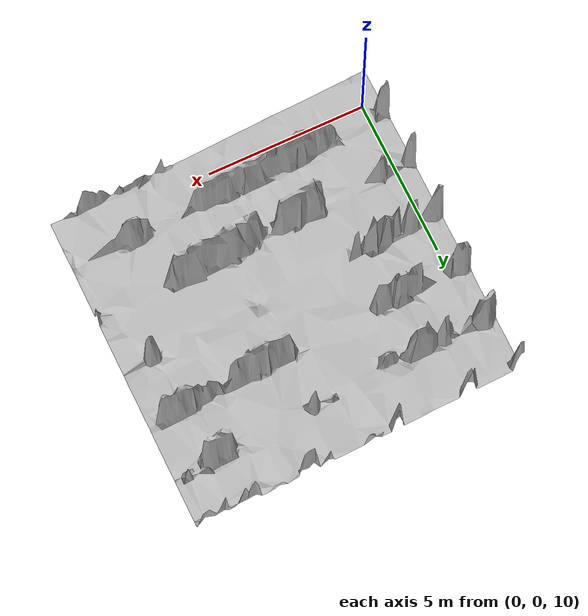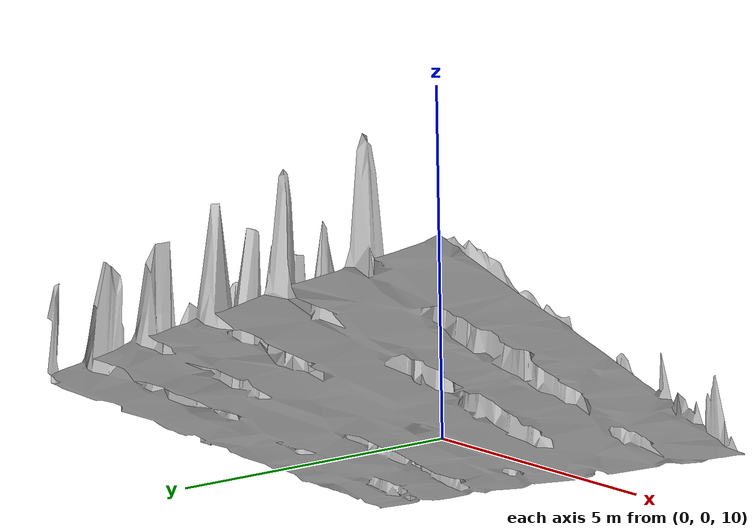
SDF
<?xml version="1.0" ?>
<sdf version="1.10">
    <model name="map_100_20">
        <link name="map_100_20_link">
            <visual name="map_100_20_visual">
                <geometry>
                    <mesh>
                        <uri>meshes/visual/map_100_20.obj</uri>
                    </mesh>
                </geometry>
            </visual>
            <collision name="map_100_20_collision">
                <surface>
                    <friction>
                        <ode>
                            <mu>2.316343837943928</mu>
                            <mu2>2.316343837943928</mu2>
                        </ode>
                        <bullet>
                            <friction>2.316343837943928</friction>
                            <friction2>2.316343837943928</friction2>
                        </bullet>
                    </friction>
                </surface>
                <geometry>
                    <mesh>
                        <uri>meshes/visual/map_100_20.obj</uri>
                    </mesh>
                </geometry>
            </collision>
        </link>
        <static>True</static>
    </model>
</sdf>
